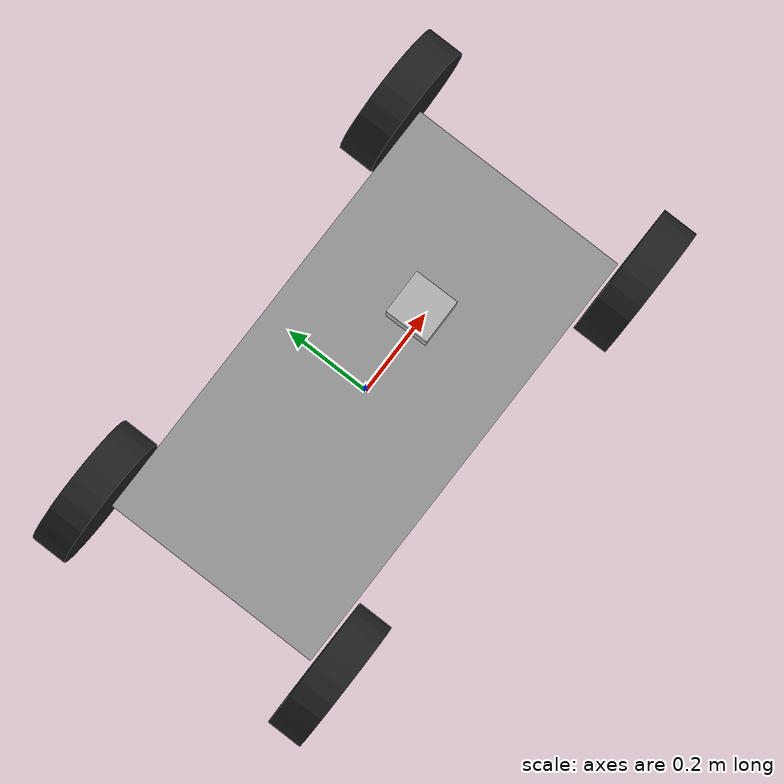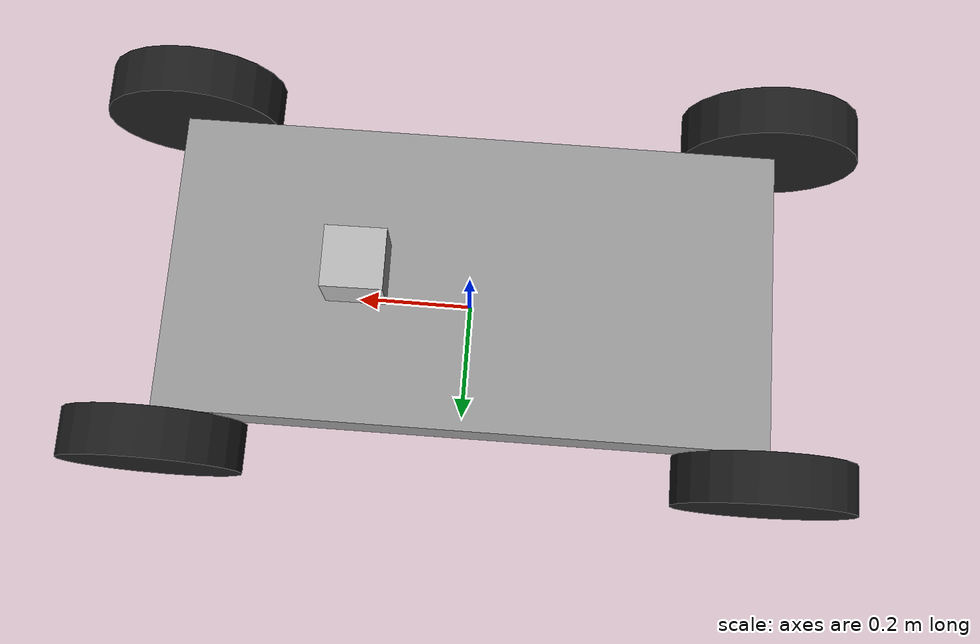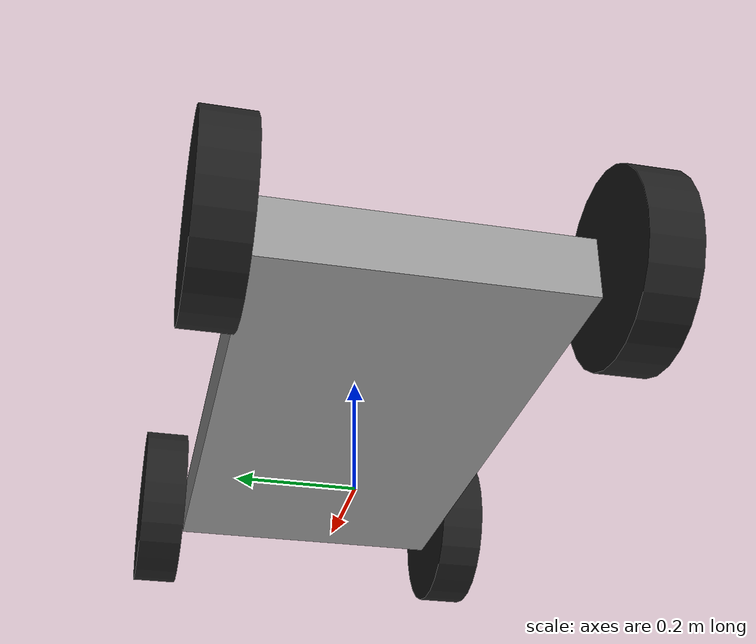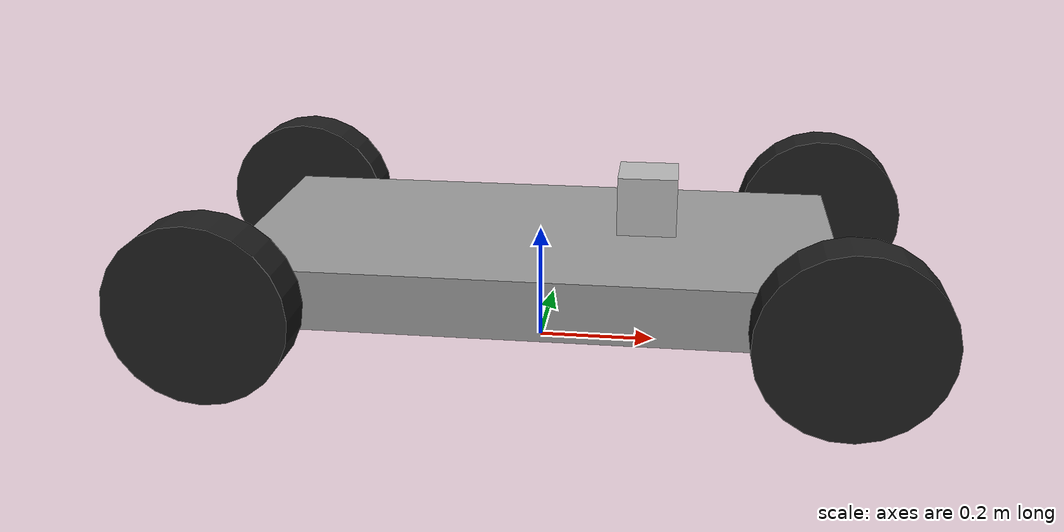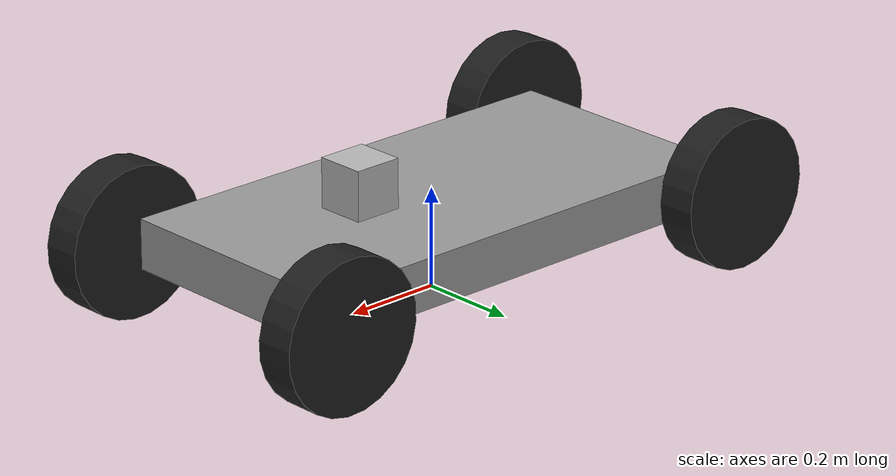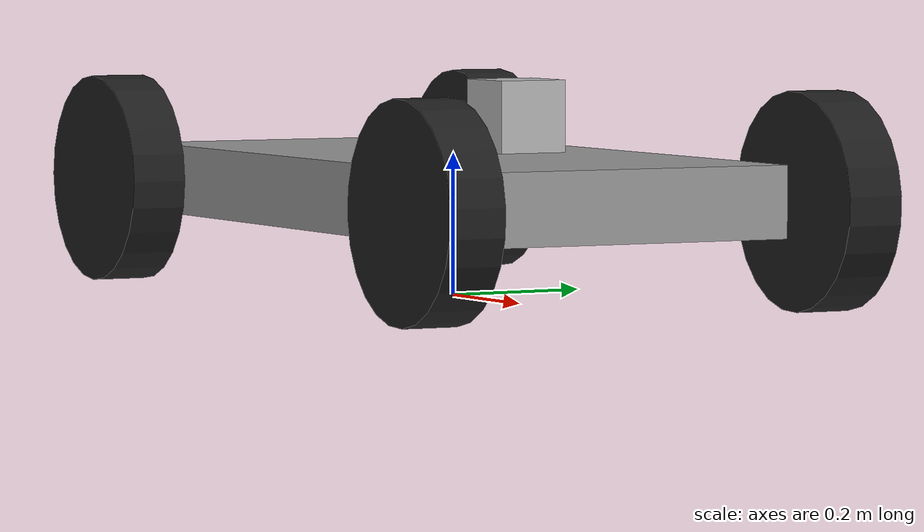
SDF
<?xml version='1.0'?>
<sdf version='1.6'>
  <model name='cart_front_steer_pancam'>
    <plugin name="rc_car" filename="librc_car.so"></plugin>
    <link name='chassis'>
      <pose frame=''>0 -0 0.15 0 -0 0</pose>
      <inertial>
        <pose frame=''>0.1 0 0 0 -0 0</pose>
        <mass>10</mass>
        <inertia>
          <ixx>0.216667</ixx>
          <iyy>0.841667</iyy>
          <izz>1.04167</izz>
          <ixy>0</ixy>
          <ixz>0</ixz>
          <iyz>0</iyz>
        </inertia>
      </inertial>
      <self_collide>0</self_collide>
      <enable_wind>0</enable_wind>
      <kinematic>0</kinematic>
      <gravity>1</gravity>
      <visual name='visual'>
        <geometry>
          <box>
            <size>1 0.5 0.1</size>
          </box>
        </geometry>
        <material>
          <script>
            <uri>file://media/materials/scripts/gazebo.material</uri>
            <name>Gazebo/Grey</name>
          </script>
          <shader type='pixel'>
            <normal_map>__default__</normal_map>
          </shader>
          <emissive>0 0 0 1</emissive>
        </material>
        <pose frame=''>0 0 0 0 -0 0</pose>
        <transparency>0</transparency>
        <cast_shadows>1</cast_shadows>
      </visual>
      <collision name='collision'>
        <laser_retro>0</laser_retro>
        <max_contacts>10</max_contacts>
        <pose frame=''>0 0 0 0 -0 0</pose>
        <geometry>
          <box>
            <size>1 0.5 0.1</size>
          </box>
        </geometry>
        <surface>
          <friction>
            <ode>
              <mu>1</mu>
              <mu2>1</mu2>
              <fdir1>0 0 0</fdir1>
              <slip1>0</slip1>
              <slip2>0</slip2>
            </ode>
            <torsional>
              <coefficient>1</coefficient>
              <patch_radius>0</patch_radius>
              <surface_radius>0</surface_radius>
              <use_patch_radius>1</use_patch_radius>
              <ode>
                <slip>0</slip>
              </ode>
            </torsional>
          </friction>
          <bounce>
            <restitution_coefficient>0</restitution_coefficient>
            <threshold>1e+06</threshold>
          </bounce>
          <contact>
            <collide_without_contact>0</collide_without_contact>
            <collide_without_contact_bitmask>1</collide_without_contact_bitmask>
            <collide_bitmask>1</collide_bitmask>
            <ode>
              <soft_cfm>0</soft_cfm>
              <soft_erp>0.2</soft_erp>
              <kp>1e+13</kp>
              <kd>1</kd>
              <max_vel>0.01</max_vel>
              <min_depth>0</min_depth>
            </ode>
            <bullet>
              <split_impulse>1</split_impulse>
              <split_impulse_penetration_threshold>-0.01</split_impulse_penetration_threshold>
              <soft_cfm>0</soft_cfm>
              <soft_erp>0.2</soft_erp>
              <kp>1e+13</kp>
              <kd>1</kd>
            </bullet>
          </contact>
        </surface>
      </collision>
    </link>
    <link name='wheel_front_left'>
      <pose frame=''>0.5 0.298 0.15 -1.5708 -0.087266 0</pose>
      <inertial>
        <mass>0.5</mass>
        <inertia>
          <ixx>0.00307917</ixx>
          <iyy>0.00307917</iyy>
          <izz>0.005625</izz>
          <ixy>0</ixy>
          <ixz>0</ixz>
          <iyz>0</iyz>
        </inertia>
        <pose frame=''>0 0 0 0 -0 0</pose>
      </inertial>
      <self_collide>0</self_collide>
      <enable_wind>0</enable_wind>
      <kinematic>0</kinematic>
      <gravity>1</gravity>
      <visual name='visual'>
        <geometry>
          <cylinder>
            <radius>0.15</radius>
            <length>0.08</length>
          </cylinder>
        </geometry>
        <material>
          <script>
            <uri>file://media/materials/scripts/gazebo.material</uri>
            <name>Gazebo/Black</name>
          </script>
          <shader type='pixel'>
            <normal_map>__default__</normal_map>
          </shader>
        </material>
        <pose frame=''>0 0 0 0 -0 0</pose>
        <transparency>0</transparency>
        <cast_shadows>1</cast_shadows>
      </visual>
      <collision name='collision'>
        <laser_retro>0</laser_retro>
        <max_contacts>10</max_contacts>
        <pose frame=''>0 0 0 0 -0 0</pose>
        <geometry>
          <cylinder>
            <radius>0.15</radius>
            <length>0.08</length>
          </cylinder>
        </geometry>
        <surface>
          <friction>
            <ode>
              <mu>1</mu>
              <mu2>1</mu2>
              <fdir1>0 0 0</fdir1>
              <slip1>0</slip1>
              <slip2>0</slip2>
            </ode>
            <torsional>
              <coefficient>1</coefficient>
              <patch_radius>0</patch_radius>
              <surface_radius>0</surface_radius>
              <use_patch_radius>1</use_patch_radius>
              <ode>
                <slip>0</slip>
              </ode>
            </torsional>
          </friction>
          <bounce>
            <restitution_coefficient>0</restitution_coefficient>
            <threshold>1e+06</threshold>
          </bounce>
          <contact>
            <collide_without_contact>0</collide_without_contact>
            <collide_without_contact_bitmask>1</collide_without_contact_bitmask>
            <collide_bitmask>1</collide_bitmask>
            <ode>
              <soft_cfm>0</soft_cfm>
              <soft_erp>0.2</soft_erp>
              <kp>1e+13</kp>
              <kd>1</kd>
              <max_vel>0.01</max_vel>
              <min_depth>0</min_depth>
            </ode>
            <bullet>
              <split_impulse>1</split_impulse>
              <split_impulse_penetration_threshold>-0.01</split_impulse_penetration_threshold>
              <soft_cfm>0</soft_cfm>
              <soft_erp>0.2</soft_erp>
              <kp>1e+13</kp>
              <kd>1</kd>
            </bullet>
          </contact>
        </surface>
      </collision>
    </link>
    <link name='wheel_front_right'>
      <pose frame=''>0.5 -0.298 0.15 -1.5708 -0.087266 0</pose>
      <inertial>
        <mass>0.5</mass>
        <inertia>
          <ixx>0.00307917</ixx>
          <iyy>0.00307917</iyy>
          <izz>0.005625</izz>
          <ixy>0</ixy>
          <ixz>0</ixz>
          <iyz>0</iyz>
        </inertia>
        <pose frame=''>0 0 0 0 -0 0</pose>
      </inertial>
      <self_collide>0</self_collide>
      <enable_wind>0</enable_wind>
      <kinematic>0</kinematic>
      <visual name='visual'>
        <geometry>
          <cylinder>
            <radius>0.15</radius>
            <length>0.08</length>
          </cylinder>
        </geometry>
        <material>
          <script>
            <uri>file://media/materials/scripts/gazebo.material</uri>
            <name>Gazebo/Black</name>
          </script>
          <shader type='pixel'/>
        </material>
        <pose frame=''>0 0 0 0 -0 0</pose>
        <transparency>0</transparency>
        <cast_shadows>1</cast_shadows>
      </visual>
      <collision name='collision'>
        <laser_retro>0</laser_retro>
        <max_contacts>10</max_contacts>
        <pose frame=''>0 0 0 0 -0 0</pose>
        <geometry>
          <cylinder>
            <radius>0.15</radius>
            <length>0.08</length>
          </cylinder>
        </geometry>
        <surface>
          <friction>
            <ode>
              <mu>1</mu>
              <mu2>1</mu2>
              <fdir1>0 0 0</fdir1>
              <slip1>0</slip1>
              <slip2>0</slip2>
            </ode>
            <torsional>
              <coefficient>1</coefficient>
              <patch_radius>0</patch_radius>
              <surface_radius>0</surface_radius>
              <use_patch_radius>1</use_patch_radius>
              <ode>
                <slip>0</slip>
              </ode>
            </torsional>
          </friction>
          <bounce>
            <restitution_coefficient>0</restitution_coefficient>
            <threshold>1e+06</threshold>
          </bounce>
          <contact>
            <collide_without_contact>0</collide_without_contact>
            <collide_without_contact_bitmask>1</collide_without_contact_bitmask>
            <collide_bitmask>1</collide_bitmask>
            <ode>
              <soft_cfm>0</soft_cfm>
              <soft_erp>0.2</soft_erp>
              <kp>1e+13</kp>
              <kd>1</kd>
              <max_vel>0.01</max_vel>
              <min_depth>0</min_depth>
            </ode>
            <bullet>
              <split_impulse>1</split_impulse>
              <split_impulse_penetration_threshold>-0.01</split_impulse_penetration_threshold>
              <soft_cfm>0</soft_cfm>
              <soft_erp>0.2</soft_erp>
              <kp>1e+13</kp>
              <kd>1</kd>
            </bullet>
          </contact>
        </surface>
      </collision>
    </link>
    <link name='wheel_rear_left'>
      <pose frame=''>-0.5 0.298 0.15 -1.5708 0 0</pose>
      <inertial>
        <mass>0.5</mass>
        <inertia>
          <ixx>0.00307917</ixx>
          <iyy>0.00307917</iyy>
          <izz>0.005625</izz>
          <ixy>0</ixy>
          <ixz>0</ixz>
          <iyz>0</iyz>
        </inertia>
        <pose frame=''>0 0 0 0 -0 0</pose>
      </inertial>
      <self_collide>0</self_collide>
      <enable_wind>0</enable_wind>
      <kinematic>0</kinematic>
      <visual name='visual'>
        <geometry>
          <cylinder>
            <radius>0.15</radius>
            <length>0.08</length>
          </cylinder>
        </geometry>
        <material>
          <script>
            <uri>file://media/materials/scripts/gazebo.material</uri>
            <name>Gazebo/Black</name>
          </script>
          <shader type='pixel'/>
        </material>
        <pose frame=''>0 0 0 0 -0 0</pose>
        <transparency>0</transparency>
        <cast_shadows>1</cast_shadows>
      </visual>
      <collision name='collision'>
        <laser_retro>0</laser_retro>
        <max_contacts>10</max_contacts>
        <pose frame=''>0 0 0 0 -0 0</pose>
        <geometry>
          <cylinder>
            <radius>0.15</radius>
            <length>0.08</length>
          </cylinder>
        </geometry>
        <surface>
          <friction>
            <ode>
              <mu>1</mu>
              <mu2>1</mu2>
              <fdir1>0 0 0</fdir1>
              <slip1>0</slip1>
              <slip2>0</slip2>
            </ode>
            <torsional>
              <coefficient>1</coefficient>
              <patch_radius>0</patch_radius>
              <surface_radius>0</surface_radius>
              <use_patch_radius>1</use_patch_radius>
              <ode>
                <slip>0</slip>
              </ode>
            </torsional>
          </friction>
          <bounce>
            <restitution_coefficient>0</restitution_coefficient>
            <threshold>1e+06</threshold>
          </bounce>
          <contact>
            <collide_without_contact>0</collide_without_contact>
            <collide_without_contact_bitmask>1</collide_without_contact_bitmask>
            <collide_bitmask>1</collide_bitmask>
            <ode>
              <soft_cfm>0</soft_cfm>
              <soft_erp>0.2</soft_erp>
              <kp>1e+13</kp>
              <kd>1</kd>
              <max_vel>0.01</max_vel>
              <min_depth>0</min_depth>
            </ode>
            <bullet>
              <split_impulse>1</split_impulse>
              <split_impulse_penetration_threshold>-0.01</split_impulse_penetration_threshold>
              <soft_cfm>0</soft_cfm>
              <soft_erp>0.2</soft_erp>
              <kp>1e+13</kp>
              <kd>1</kd>
            </bullet>
          </contact>
        </surface>
      </collision>
    </link>
    <link name='wheel_rear_right'>
      <pose frame=''>-0.5 -0.298 0.15 -1.5708 0 0</pose>
      <inertial>
        <mass>0.5</mass>
        <inertia>
          <ixx>0.00307917</ixx>
          <iyy>0.00307917</iyy>
          <izz>0.005625</izz>
          <ixy>0</ixy>
          <ixz>0</ixz>
          <iyz>0</iyz>
        </inertia>
        <pose frame=''>0 0 0 0 -0 0</pose>
      </inertial>
      <self_collide>0</self_collide>
      <enable_wind>0</enable_wind>
      <kinematic>0</kinematic>
      <visual name='visual'>
        <geometry>
          <cylinder>
            <radius>0.15</radius>
            <length>0.08</length>
          </cylinder>
        </geometry>
        <material>
          <script>
            <uri>file://media/materials/scripts/gazebo.material</uri>
            <name>Gazebo/Black</name>
          </script>
          <shader type='pixel'/>
        </material>
        <pose frame=''>0 0 0 0 -0 0</pose>
        <transparency>0</transparency>
        <cast_shadows>1</cast_shadows>
      </visual>
      <collision name='collision'>
        <laser_retro>0</laser_retro>
        <max_contacts>10</max_contacts>
        <pose frame=''>0 0 0 0 -0 0</pose>
        <geometry>
          <cylinder>
            <radius>0.15</radius>
            <length>0.08</length>
          </cylinder>
        </geometry>
        <surface>
          <friction>
            <ode>
              <mu>1</mu>
              <mu2>1</mu2>
              <fdir1>0 0 0</fdir1>
              <slip1>0</slip1>
              <slip2>0</slip2>
            </ode>
            <torsional>
              <coefficient>1</coefficient>
              <patch_radius>0</patch_radius>
              <surface_radius>0</surface_radius>
              <use_patch_radius>1</use_patch_radius>
              <ode>
                <slip>0</slip>
              </ode>
            </torsional>
          </friction>
          <bounce>
            <restitution_coefficient>0</restitution_coefficient>
            <threshold>1e+06</threshold>
          </bounce>
          <contact>
            <collide_without_contact>0</collide_without_contact>
            <collide_without_contact_bitmask>1</collide_without_contact_bitmask>
            <collide_bitmask>1</collide_bitmask>
            <ode>
              <soft_cfm>0</soft_cfm>
              <soft_erp>0.2</soft_erp>
              <kp>1e+13</kp>
              <kd>1</kd>
              <max_vel>0.01</max_vel>
              <min_depth>0</min_depth>
            </ode>
            <bullet>
              <split_impulse>1</split_impulse>
              <split_impulse_penetration_threshold>-0.01</split_impulse_penetration_threshold>
              <soft_cfm>0</soft_cfm>
              <soft_erp>0.2</soft_erp>
              <kp>1e+13</kp>
              <kd>1</kd>
            </bullet>
          </contact>
        </surface>
      </collision>
    </link>
    <model name='panoramic_camera'>
      <pose frame=''>0.183349 0.003569 0.259852 -3.13316 -1.5707 0.000408</pose>
      <link name='link'>
        <inertial>
          <mass>0.1</mass>
          <pose frame=''>0 0 0 0 -0 0</pose>
          <inertia>
            <ixx>0.0001</ixx>
            <ixy>0</ixy>
            <ixz>0</ixz>
            <iyy>0.0001</iyy>
            <iyz>0</iyz>
            <izz>0.0001</izz>
          </inertia>
        </inertial>
        <collision name='collision'>
          <geometry>
            <box>
              <size>0.1 0.1 0.1</size>
            </box>
          </geometry>
        </collision>
        <visual name='visual'>
          <geometry>
            <box>
              <size>0.1 0.1 0.1</size>
            </box>
          </geometry>
        </visual>
        <sensor name='camera' type='wideanglecamera'>
          <camera name='__default__'>
            <horizontal_fov>6.2831</horizontal_fov>
            <image>
              <width>640</width>
              <height>640</height>
              <format>B8G8R8</format>
            </image>
            <clip>
              <near>0.1</near>
              <far>100</far>
            </clip>
            <lens>
              <type>custom</type>
              <scale_to_hfov>1</scale_to_hfov>
              <cutoff_angle>6.2831</cutoff_angle>
              <env_texture_size>512</env_texture_size>
              <custom_function>
                <c1>1.05</c1>
                <c2>4</c2>
                <f>2</f>
                <fun>tan</fun>
              </custom_function>
            </lens>
          </camera>
          <always_on>1</always_on>
          <update_rate>30</update_rate>
        </sensor>
      </link>
    </model>
    <joint name='chassis_JOINT_0' type='fixed'>
      <parent>chassis</parent>
      <child>panoramic_camera::link</child>
      <pose frame=''>0 0 0 0 -0 0</pose>
      <physics>
        <ode>
          <limit>
            <cfm>0</cfm>
            <erp>0.2</erp>
          </limit>
          <suspension>
            <cfm>0</cfm>
            <erp>0.2</erp>
          </suspension>
        </ode>
      </physics>
    </joint>
    <joint name='wheel_front_left_steer_spin' type='universal'>
      <parent>chassis</parent>
      <child>wheel_front_left</child>
      <pose frame=''>0 0 0 0 -0 0</pose>
      <axis>
        <xyz>0 -1 0</xyz>
        <use_parent_model_frame>0</use_parent_model_frame>
        <limit>
          <lower>-0.610865</lower>
          <upper>0.610865</upper>
          <effort>-1</effort>
          <velocity>-1</velocity>
        </limit>
        <dynamics>
          <spring_reference>0</spring_reference>
          <spring_stiffness>0</spring_stiffness>
          <damping>0</damping>
          <friction>0</friction>
        </dynamics>
      </axis>
      <axis2>
        <xyz>0 0 1</xyz>
        <use_parent_model_frame>0</use_parent_model_frame>
        <dynamics>
          <spring_reference>0</spring_reference>
          <spring_stiffness>0</spring_stiffness>
          <damping>0</damping>
          <friction>0</friction>
        </dynamics>
        <limit>
          <lower>-1e+16</lower>
          <upper>1e+16</upper>
          <effort>-1</effort>
          <velocity>-1</velocity>
        </limit>
      </axis2>
      <physics>
        <ode>
          <limit>
            <cfm>0</cfm>
            <erp>0.2</erp>
          </limit>
          <suspension>
            <cfm>0</cfm>
            <erp>0.2</erp>
          </suspension>
        </ode>
      </physics>
    </joint>
    <joint name='wheel_front_right_steer_spin' type='universal'>
      <parent>chassis</parent>
      <child>wheel_front_right</child>
      <pose frame=''>0 0 0 0 -0 0</pose>
      <axis>
        <xyz>0 -1 0</xyz>
        <use_parent_model_frame>0</use_parent_model_frame>
        <limit>
          <lower>-0.610865</lower>
          <upper>0.610865</upper>
          <effort>-1</effort>
          <velocity>-1</velocity>
        </limit>
        <dynamics>
          <spring_reference>0</spring_reference>
          <spring_stiffness>0</spring_stiffness>
          <damping>0</damping>
          <friction>0</friction>
        </dynamics>
      </axis>
      <axis2>
        <xyz>0 0 1</xyz>
        <use_parent_model_frame>0</use_parent_model_frame>
        <dynamics>
          <spring_reference>0</spring_reference>
          <spring_stiffness>0</spring_stiffness>
          <damping>0</damping>
          <friction>0</friction>
        </dynamics>
        <limit>
          <lower>-1e+16</lower>
          <upper>1e+16</upper>
          <effort>-1</effort>
          <velocity>-1</velocity>
        </limit>
      </axis2>
      <physics>
        <ode>
          <limit>
            <cfm>0</cfm>
            <erp>0.2</erp>
          </limit>
          <suspension>
            <cfm>0</cfm>
            <erp>0.2</erp>
          </suspension>
        </ode>
      </physics>
    </joint>
    <joint name='wheel_rear_left_spin' type='revolute'>
      <parent>chassis</parent>
      <child>wheel_rear_left</child>
      <pose frame=''>0 0 0 0 -0 0</pose>
      <axis>
        <xyz>0 0 1</xyz>
        <use_parent_model_frame>0</use_parent_model_frame>
        <limit>
          <lower>-1e+16</lower>
          <upper>1e+16</upper>
          <effort>-1</effort>
          <velocity>-1</velocity>
        </limit>
        <dynamics>
          <spring_reference>0</spring_reference>
          <spring_stiffness>0</spring_stiffness>
          <damping>0</damping>
          <friction>0</friction>
        </dynamics>
      </axis>
      <physics>
        <ode>
          <limit>
            <cfm>0</cfm>
            <erp>0.2</erp>
          </limit>
          <suspension>
            <cfm>0</cfm>
            <erp>0.2</erp>
          </suspension>
        </ode>
      </physics>
    </joint>
    <joint name='wheel_rear_right_spin' type='revolute'>
      <parent>chassis</parent>
      <child>wheel_rear_right</child>
      <pose frame=''>0 0 0 0 -0 0</pose>
      <axis>
        <xyz>0 0 1</xyz>
        <use_parent_model_frame>0</use_parent_model_frame>
        <limit>
          <lower>-1e+16</lower>
          <upper>1e+16</upper>
          <effort>-1</effort>
          <velocity>-1</velocity>
        </limit>
        <dynamics>
          <spring_reference>0</spring_reference>
          <spring_stiffness>0</spring_stiffness>
          <damping>0</damping>
          <friction>0</friction>
        </dynamics>
      </axis>
      <physics>
        <ode>
          <limit>
            <cfm>0</cfm>
            <erp>0.2</erp>
          </limit>
          <suspension>
            <cfm>0</cfm>
            <erp>0.2</erp>
          </suspension>
        </ode>
      </physics>
    </joint>
    <static>0</static>
    <allow_auto_disable>1</allow_auto_disable>
  </model>
</sdf>
